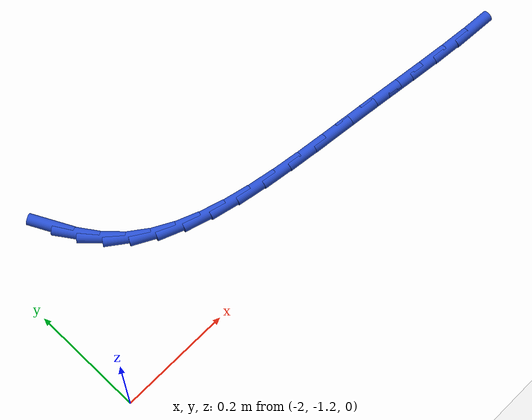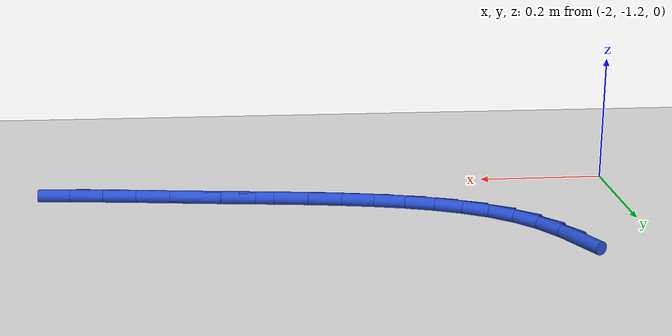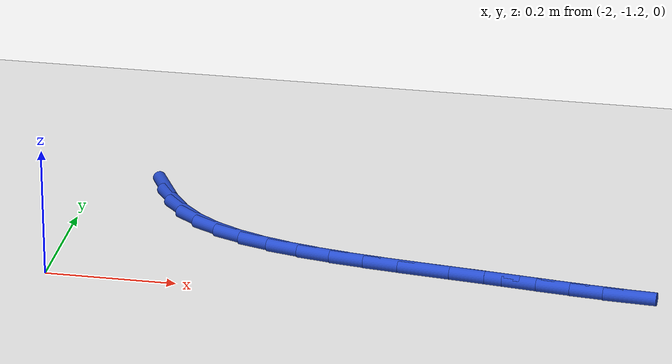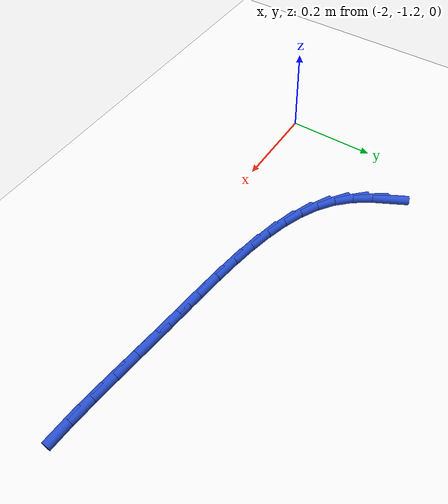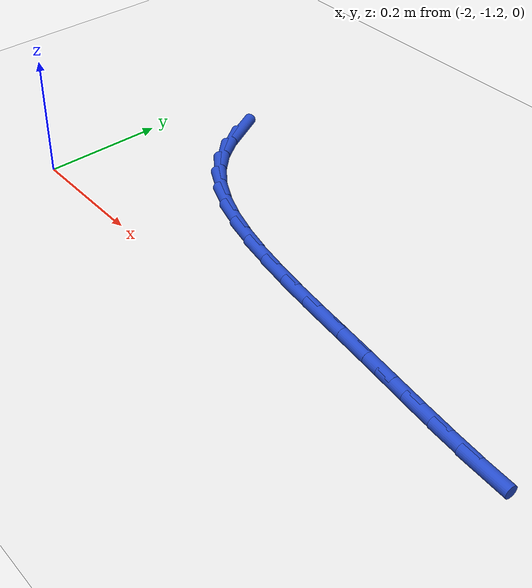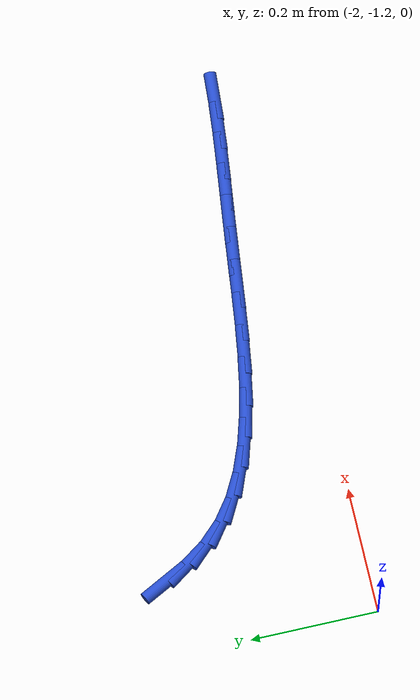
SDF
<sdf version="1.6">
 <world name="default">
  <model name="ground_plane">
   <static>1</static>
   <link name="link">
    <collision name="collision">
     <geometry><plane><normal>0 0 1</normal><size>100 100</size></plane></geometry>
     <surface><friction><ode><mu>100</mu><mu2>50</mu2></ode></friction></surface>
    </collision>
    <visual name="visual">
     <cast_shadows>0</cast_shadows>
     <geometry><plane><normal>0 0 1</normal><size>100 100</size></plane></geometry>
     <material>
      <script><uri>file://media/materials/scripts/gazebo.material</uri><name>Gazebo/WhiteGlow</name></script>
     </material>
    </visual>
   </link>
  </model>
  <model name="line">
   <link name="link_87">
    <pose>-1.8847473320151418 -0.8918999997145769 0.01 0 1.57 -1.0948112210284757</pose>
    <collision name="collision">
     <geometry><cylinder><radius>0.01</radius><length>0.08</length></cylinder></geometry>
    </collision>
    <visual name="visual">
     <material>
      <script><name>Gazebo/Blue</name><uri>file://media/materials/scripts/gazebo.material</uri></script>
     </material>
     <geometry><cylinder><radius>0.01</radius><length>0.08</length></cylinder></geometry>
    </visual>
   </link>
   <link name="link_88">
    <pose>-1.864694072198248 -0.9307992132217249 0.01 0 1.57 -0.963855169401</pose>
    <collision name="collision">
     <geometry><cylinder><radius>0.01</radius><length>0.08</length></cylinder></geometry>
    </collision>
    <visual name="visual">
     <material>
      <script><name>Gazebo/Blue</name><uri>file://media/materials/scripts/gazebo.material</uri></script>
     </material>
     <geometry><cylinder><radius>0.01</radius><length>0.08</length></cylinder></geometry>
    </visual>
   </link>
   <link name="link_89">
    <pose>-1.8405444881731647 -0.9655780664593405 0.01 0 1.57 -0.8052325282911504</pose>
    <collision name="collision">
     <geometry><cylinder><radius>0.01</radius><length>0.08</length></cylinder></geometry>
    </collision>
    <visual name="visual">
     <material>
      <script><name>Gazebo/Blue</name><uri>file://media/materials/scripts/gazebo.material</uri></script>
     </material>
     <geometry><cylinder><radius>0.01</radius><length>0.08</length></cylinder></geometry>
    </visual>
   </link>
   <link name="link_90">
    <pose>-1.8115652844041614 -0.9957302577165551 0.01 0 1.57 -0.6358854588960393</pose>
    <collision name="collision">
     <geometry><cylinder><radius>0.01</radius><length>0.08</length></cylinder></geometry>
    </collision>
    <visual name="visual">
     <material>
      <script><name>Gazebo/Blue</name><uri>file://media/materials/scripts/gazebo.material</uri></script>
     </material>
     <geometry><cylinder><radius>0.01</radius><length>0.08</length></cylinder></geometry>
    </visual>
   </link>
   <link name="link_91">
    <pose>-1.7773382373320588 -1.0209955651816158 0.01 0 1.57 -0.49068066959245066</pose>
    <collision name="collision">
     <geometry><cylinder><radius>0.01</radius><length>0.08</length></cylinder></geometry>
    </collision>
    <visual name="visual">
     <material>
      <script><name>Gazebo/Blue</name><uri>file://media/materials/scripts/gazebo.material</uri></script>
     </material>
     <geometry><cylinder><radius>0.01</radius><length>0.08</length></cylinder></geometry>
    </visual>
   </link>
   <link name="link_92">
    <pose>-1.7383538234005382 -1.0418234867946687 0.01 0 1.57 -0.37512971429225567</pose>
    <collision name="collision">
     <geometry><cylinder><radius>0.01</radius><length>0.08</length></cylinder></geometry>
    </collision>
    <visual name="visual">
     <material>
      <script><name>Gazebo/Blue</name><uri>file://media/materials/scripts/gazebo.material</uri></script>
     </material>
     <geometry><cylinder><radius>0.01</radius><length>0.08</length></cylinder></geometry>
    </visual>
   </link>
   <link name="link_93">
    <pose>-1.6952653624339706 -1.0587907056652035 0.01 0 1.57 -0.28595656556835264</pose>
    <collision name="collision">
     <geometry><cylinder><radius>0.01</radius><length>0.08</length></cylinder></geometry>
    </collision>
    <visual name="visual">
     <material>
      <script><name>Gazebo/Blue</name><uri>file://media/materials/scripts/gazebo.material</uri></script>
     </material>
     <geometry><cylinder><radius>0.01</radius><length>0.08</length></cylinder></geometry>
    </visual>
   </link>
   <link name="link_94">
    <pose>-1.6487261742567283 -1.0724739049027074 0.01 0 1.57 -0.21890409124774354</pose>
    <collision name="collision">
     <geometry><cylinder><radius>0.01</radius><length>0.08</length></cylinder></geometry>
    </collision>
    <visual name="visual">
     <material>
      <script><name>Gazebo/Blue</name><uri>file://media/materials/scripts/gazebo.material</uri></script>
     </material>
     <geometry><cylinder><radius>0.01</radius><length>0.08</length></cylinder></geometry>
    </visual>
   </link>
   <link name="link_95">
    <pose>-1.5993895786931822 -1.0834497676166681 0.01 0 1.57 -0.17015469778136982</pose>
    <collision name="collision">
     <geometry><cylinder><radius>0.01</radius><length>0.08</length></cylinder></geometry>
    </collision>
    <visual name="visual">
     <material>
      <script><name>Gazebo/Blue</name><uri>file://media/materials/scripts/gazebo.material</uri></script>
     </material>
     <geometry><cylinder><radius>0.01</radius><length>0.08</length></cylinder></geometry>
    </visual>
   </link>
   <link name="link_96">
    <pose>-1.547908895567705 -1.0922949769165737 0.01 0 1.57 -0.1367851660882896</pose>
    <collision name="collision">
     <geometry><cylinder><radius>0.01</radius><length>0.08</length></cylinder></geometry>
    </collision>
    <visual name="visual">
     <material>
      <script><name>Gazebo/Blue</name><uri>file://media/materials/scripts/gazebo.material</uri></script>
     </material>
     <geometry><cylinder><radius>0.01</radius><length>0.08</length></cylinder></geometry>
    </visual>
   </link>
   <link name="link_97">
    <pose>-1.4949374447046686 -1.099586215911912 0.01 0 1.57 -0.11680615319466874</pose>
    <collision name="collision">
     <geometry><cylinder><radius>0.01</radius><length>0.08</length></cylinder></geometry>
    </collision>
    <visual name="visual">
     <material>
      <script><name>Gazebo/Blue</name><uri>file://media/materials/scripts/gazebo.material</uri></script>
     </material>
     <geometry><cylinder><radius>0.01</radius><length>0.08</length></cylinder></geometry>
    </visual>
   </link>
   <link name="link_98">
    <pose>-1.4411285459284446 -1.1059001677121718 0.01 0 1.57 -0.10908581552073185</pose>
    <collision name="collision">
     <geometry><cylinder><radius>0.01</radius><length>0.08</length></cylinder></geometry>
    </collision>
    <visual name="visual">
     <material>
      <script><name>Gazebo/Blue</name><uri>file://media/materials/scripts/gazebo.material</uri></script>
     </material>
     <geometry><cylinder><radius>0.01</radius><length>0.08</length></cylinder></geometry>
    </visual>
   </link>
   <link name="link_99">
    <pose>-1.3871355190634043 -1.1118135154268398 0.01 0 1.57 -0.112872602091108</pose>
    <collision name="collision">
     <geometry><cylinder><radius>0.01</radius><length>0.08</length></cylinder></geometry>
    </collision>
    <visual name="visual">
     <material>
      <script><name>Gazebo/Blue</name><uri>file://media/materials/scripts/gazebo.material</uri></script>
     </material>
     <geometry><cylinder><radius>0.01</radius><length>0.08</length></cylinder></geometry>
    </visual>
   </link>
   <link name="link_100">
    <pose>-1.3335984910530274 -1.1178821730222708 0.01 0 1.57 -0.11887089340364265</pose>
    <collision name="collision">
     <geometry><cylinder><radius>0.01</radius><length>0.08</length></cylinder></geometry>
    </collision>
    <visual name="visual">
     <material>
      <script><name>Gazebo/Blue</name><uri>file://media/materials/scripts/gazebo.material</uri></script>
     </material>
     <geometry><cylinder><radius>0.01</radius><length>0.08</length></cylinder></geometry>
    </visual>
   </link>
   <link name="link_101">
    <pose>-1.2808525434227762 -1.1241818309259826 0.01 0 1.57 -0.11740894348112826</pose>
    <collision name="collision">
     <geometry><cylinder><radius>0.01</radius><length>0.08</length></cylinder></geometry>
    </collision>
    <visual name="visual">
     <material>
      <script><name>Gazebo/Blue</name><uri>file://media/materials/scripts/gazebo.material</uri></script>
     </material>
     <geometry><cylinder><radius>0.01</radius><length>0.08</length></cylinder></geometry>
    </visual>
   </link>
   <link name="link_102">
    <pose>-1.2289268156164719 -1.1303065444369378 0.01 0 1.57 -0.10768131427293469</pose>
    <collision name="collision">
     <geometry><cylinder><radius>0.01</radius><length>0.08</length></cylinder></geometry>
    </collision>
    <visual name="visual">
     <material>
      <script><name>Gazebo/Blue</name><uri>file://media/materials/scripts/gazebo.material</uri></script>
     </material>
     <geometry><cylinder><radius>0.01</radius><length>0.08</length></cylinder></geometry>
    </visual>
   </link>
   <link name="link_103">
    <pose>-1.1778370748638398 -1.1358293173922622 0.01 0 1.57 -0.08921352138111834</pose>
    <collision name="collision">
     <geometry><cylinder><radius>0.01</radius><length>0.08</length></cylinder></geometry>
    </collision>
    <visual name="visual">
     <material>
      <script><name>Gazebo/Blue</name><uri>file://media/materials/scripts/gazebo.material</uri></script>
     </material>
     <geometry><cylinder><radius>0.01</radius><length>0.08</length></cylinder></geometry>
    </visual>
   </link>
   <link name="link_104">
    <pose>-1.1275990883946017 -1.140323153629078 0.01 0 1.57 -0.061455323962336786</pose>
    <collision name="collision">
     <geometry><cylinder><radius>0.01</radius><length>0.08</length></cylinder></geometry>
    </collision>
    <visual name="visual">
     <material>
      <script><name>Gazebo/Blue</name><uri>file://media/materials/scripts/gazebo.material</uri></script>
     </material>
     <geometry><cylinder><radius>0.01</radius><length>0.08</length></cylinder></geometry>
    </visual>
   </link>
  </model>
 </world>
</sdf>
